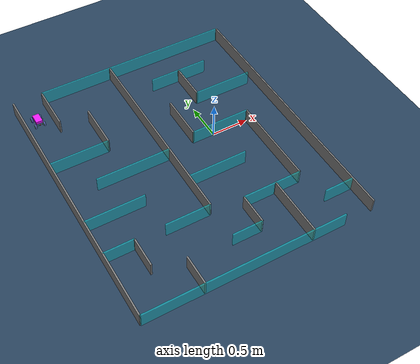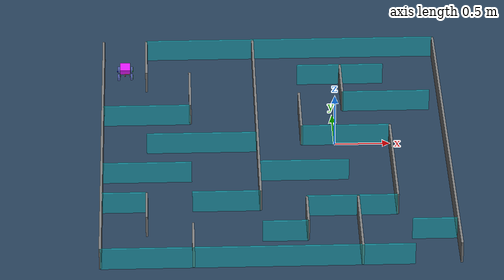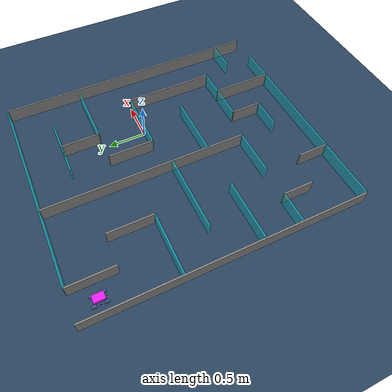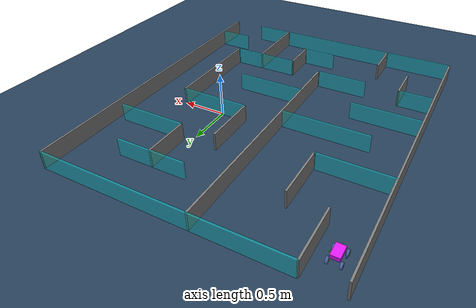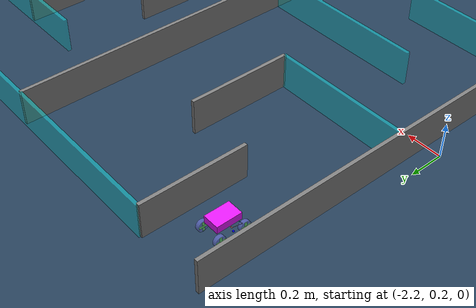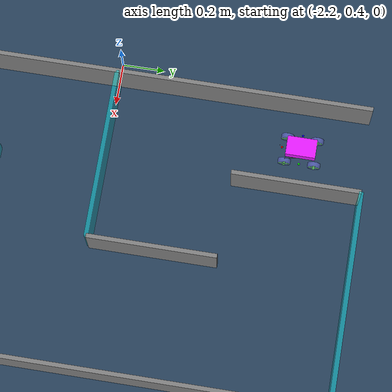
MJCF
<mujoco model="model scene">
  <include file="model1.xml"/>

  <!-- Add some fluid viscosity to prevent the hanging box from jiggling forever -->
  <option viscosity="0.5"/>

  <statistic center="0 0 1" extent="0.3"/>

  <visual>
    <!-- Настройки камеры для хорошего обзора модели -->
    <global azimuth="120" elevation="-20"/>
    <map znear="0.01" zfar="100"/>
    <quality shadowsize="2048"/>
  </visual>

  <asset>
    <texture type="skybox" builtin="gradient" rgb1="0.3 0.5 0.7" rgb2="0 0 0" width="512" height="3072"/>
    <texture type="2d" name="groundplane" builtin="checker" mark="edge" rgb1="0.2 0.3 0.4" rgb2="0.1 0.2 0.3"
      markrgb="0.8 0.8 0.8" width="300" height="300"/>
    <material name="groundplane" texture="groundplane" texuniform="true" texrepeat="5 5" reflectance="0.2"/>
  </asset>

  <asset>
    <texture type="skybox" builtin="gradient" rgb1="0.6 0.8 1" rgb2="0 0 0" width="512" height="512"/>
    <material name="wall_mat" rgba="0.2 0.2 0.2 1"/>
    <material name="floor_mat" rgba="0.8 0.8 0.8 1"/>
  </asset>

  <worldbody>
    <light pos="0 0 1"/>
    <light pos="0 -0.2 1" dir="0 0.2 -0.8" directional="true"/>

    <body pos="0 0 0"   >

      <geom name="1" type="box" size="1.35 0.01 0.1 " pos="-0.35 1.6 0.1" rgba="0 1 2 0.4"/>
      <geom name="2" type="box" size="0.01 1.8 0.1 " pos="-2.1 -0.2 0.1" />
      <geom name="3" type="box" size="0.01 0.3 0.1 " pos="-1.7 1.3 0.1" />
      <geom name="5" type="box" size="0.01 0.3 0.1 " pos="-1.3 0.7 0.1" />
      <geom name="6" type="box" size="0.4 0.01 0.1 " pos="-1.7 0.4 0.1" rgba="0 1 2 0.4"/>
      <geom name="7" type="box" size="0.5 0.01 0.1 " pos="-1.2 -0.1 0.1" rgba="0 1 2 0.4"/>
      <geom name="8" type="box" size="0.01 1.35 0.1 " pos="-0.7 0.25 0.1" />
      <geom name="9" type="box" size="0.4 0.01 0.1 " pos="-1.7 -0.6 0.1" rgba="0 1 2 0.4"/>
      <geom name="10" type="box" size="0.3 0.01 0.1 " pos="-1 -1.1 0.1" rgba="0 1 2 0.4"/>
      <geom name="11" type="box" size="0.2 0.01 0.1 " pos="-1.9 -1.1 0.1" rgba="0 1 2 0.4"/>
      <geom name="12" type="box" size="0.01 0.2 0.1 " pos="-1.7 -1.3 0.1" />
      <geom name="13" type="box" size="1.35 0.01 0.1 " pos="-.75 -2 0.1" rgba="0 1 2 0.4"/>
      <geom name="14" type="box" size="0.01 0.2 0.1 " pos="-1.3 -1.8 0.1" />
      <geom name="15" type="box" size="0.4 0.01 0.1 " pos="-.3 -0.6 0.1" rgba="0 1 2 0.4"/>
      <geom name="16" type="box" size="0.2 0.01 0.1 " pos="-.5 -1.6 0.1" rgba="0 1 2 0.4"/>
      <geom name="17" type="box" size="0.01 0.2 0.1 " pos="-0.3 -1.4 0.1" />
      <geom name="18" type="box" size="0.4 0.01 0.1 " pos=".1 -1.2 0.1" rgba="0 1 2 0.4"/>
      <geom name="19" type="box" size="0.01 0.4 0.1 " pos="0.15 -1.6 0.1" />
      <geom name="20"   type="box" size="0.01 0.6 0.1 " pos="0.5 -0.6 0.1" />
      <geom name="21" type="box" size="0.4 0.01 0.1 " pos=".1 0 0.1" rgba="0 1 2 0.4"/>
      <geom name="22" type="box" size="0.01 0.3 0.1 " pos="-0.3 0.3 0.1" />
      <geom name="23" type="box" size="0.4 0.01 0.1 " pos=".1 1.1 0.1" rgba="0 1 2 0.4"/>
      <geom name="24" type="box" size="0.01 0.25 0.1 " pos="0.1 0.85 0.1" />
      <geom name="25" type="box" size="0.4 0.01 0.1 " pos=".5 0.6 0.1" rgba="0 1 2 0.4"/>
      <geom name="26" type="box" size="0.2 0.01 0.1 " pos=".8 -1.6 0.1" rgba="0 1 2 0.4"/>

      <geom type="box" size="0.01 1.8 0.1 " pos="1 -0.2 0.1" />

<!--
    Empty or correctly commented content here now
-->
    </body>

  </worldbody>

</mujoco>

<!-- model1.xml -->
<mujoco>
  <compiler autolimits="true"/>

  <asset>
    <texture name="grid" type="2d" builtin="checker" width="512" height="512" rgb1=".1 .2 .3" rgb2=".2 .3 .4"/>
    <material name="grid" texture="grid" texrepeat="1 1" texuniform="true" reflectance=".2"/>

  </asset>

  <default>
    <joint damping=".03" actuatorfrcrange="-0.5 0.5"/>
    <default class="wheel">
      <geom type="cylinder" size=".03 .01" rgba=".5 .5 1 0.5"/>
    </default>
    <default class="decor">
      <site type="box" rgba=".5 1 .5 0.8"/>
    </default>
  </default>

  <worldbody>

    <geom type="plane" size="30 30 .01" material="grid"/>
    <body name="car" pos="-1.9 1.3 .03" euler="0 0 270">
      <camera name="front_cam" mode="fixed" pos="0.1 0 0.2" euler="0 -50 270" fovy="120"/>

      <site name="camera_site" pos="0.1 0 0.05" euler="0 15 0" size="0.001"/>

      <freejoint/>
      <light name="top light" pos="0 0 2" mode="trackcom" diffuse=".4 .4 .4"/>
      <geom name="chasis" mass="20" type="box" size="0.07 0.045 0.02" pos="0 0 0.05" rgba="0.9 0.1 1 1"/>
      <body name="left wheel" pos="-.07 .06 0" zaxis="0 1 0">
        <joint name="left"/>
        <geom class="wheel"/>
        <site class="decor" size=".006 .025 .0115"/>
        <site class="decor" size=".025 .006 .0115"/>
      </body>
      <body name="right wheel" pos="-.07 -.06 0" zaxis="0 1 0">
        <joint name="right"/>
        <geom class="wheel"/>
        <site class="decor" size=".006 .025 .0115"/>
        <site class="decor" size=".025 .006 .0115"/>
      </body>

      <body name="front left" pos=".07 .06 0" zaxis="0 1 0">
        <joint name="front left" damping="1" type="hinge" range="-30 30" axis="0 1 0"/>

        <joint name="j3"/>
        <geom class="wheel"/>
        <site class="decor" size=".006 .025 .0115"/>
        <site class="decor" size=".025 .006 .0115"/>
      </body>
      <body name="front right " pos=".07 -.06 0" zaxis="0 1 0">
        <joint name="front right" damping="1" type="hinge" range="-30 30" axis="0 1 0"/>
        <joint name="j4"/>
        <geom class="wheel"/>
        <site class="decor" size=".006 .025 .0115"/>
        <site class="decor" size=".025 .006 .0115"/>
      </body>

      <body name="fixed" pos="0.07 0 0" zaxis="1 0 0">
        <geom name="g4" type="box" size="0.001 0.045 0.001" rgba="0 0.5 0.5 1"/>
        <site name="s0" size="0.003" pos="0 0.045 0"/>
        <site name="s1" size="0.003" pos="0 -0.045 0"/>

     </body>

      <body pos="0.02 0 0">
        <joint name="acker" pos="0 0 0" type="slide" axis="0 1 0" />
        <geom type="box" size="0.001 0.035 0.001" rgba="1 0.3 0.3 1" />
        <site name="s5" size="0.003" pos="0 -0.035 0" rgba="1 0.5 0.5 1"/>
        <site name="s6" size="0.003" pos="0 0.035 0" rgba="1 0.5 0.5 1"/>

      </body>
    <!-- Новый site для IMU -->
    <site name="imu" pos="0 0 0.02" size="0.005" rgba="1 1 0 1"/>
    <!-- Сенсоры расстояния / касания -->
    <site name="sensor_front" pos="0.09 0 0.02" size="0.005" rgba="1 0 0 1"/>
    <site name="sensor_left"  pos="0 0.07 0.02" size="0.005" rgba="0 1 0 1"/>
    <site name="sensor_right" pos="0 -0.07 0.02" size="0.005" rgba="0 0 1 1"/>

    </body>
  </worldbody>

  <tendon>

    <fixed name="4x4">
      <joint joint="j4" coef=".5"/>
      <joint joint="j3" coef=".5"/>
      <joint joint="left" coef=".5"/>
      <joint joint="right" coef=".5"/>
    </fixed>

    <fixed name="turn_acker">
      <joint joint="front right" coef="1"/>
      <joint joint="front left" coef="1"/>
      <joint joint="acker" coef="-1" />

    </fixed>
    <fixed name="turn">
      <joint joint="front right" coef="10"/>
      <joint joint="front left" coef="10"/>

    </fixed>

    <spatial  width=".001" stiffness="1000">
      <site site="s0"/>
      <site site="s6"/>
      <site site="s5"/>
      <site site="s1"/>
    </spatial>

  </tendon>

  <actuator>
    <motor name="4x4" tendon="4x4" ctrlrange="-100 100"/>

    <motor name="turn_acker" tendon="turn_acker" ctrlrange="-1 1"/>
    <motor name="turn" tendon="turn" ctrlrange="-1 1"/>

  </actuator>

  <sensor>
    <jointactuatorfrc name="right" joint="right"/>
    <jointactuatorfrc name="left" joint="left"/>

    <!-- Гироскоп -->
    <gyro name="gyro" site="imu"/>

    <!-- Акселерометр -->
    <accelerometer name="accel" site="imu"/>

    <!-- Лазерные дальномеры -->
    <rangefinder name="range_front" site="sensor_front"/>
    <rangefinder name="range_left" site="sensor_left"/>
    <rangefinder name="range_right" site="sensor_right"/>

    <!-- Сенсоры контакта (тач-сенсоры) -->
    <touch name="touch_front" site="sensor_front"/>
    <touch name="touch_left" site="sensor_left"/>
    <touch name="touch_right" site="sensor_right"/>

  </sensor>
</mujoco>
